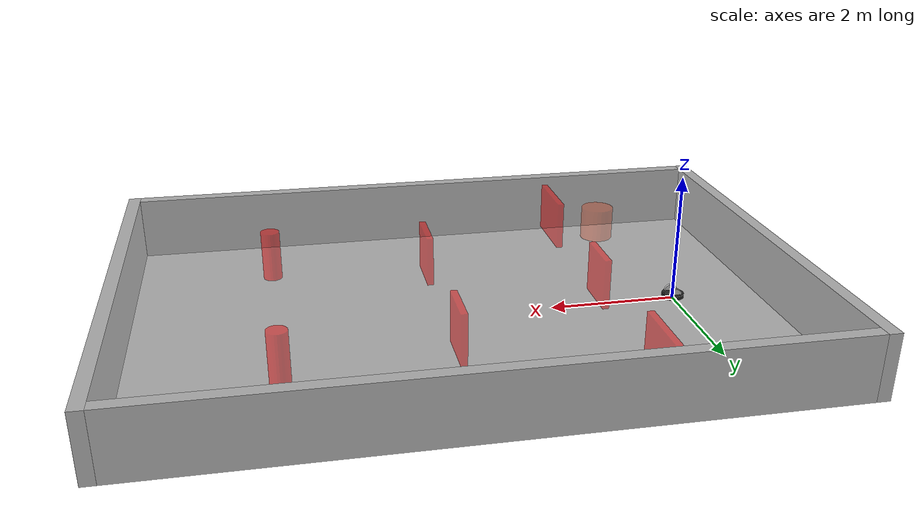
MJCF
<mujoco model="jackal_safe_navigation">
	<compiler angle="radian" meshdir="meshes/" />

    <size njmax="3000" nconmax="1000" />
    <option gravity="0 0 -9.8"/>
	<option timestep="0.002">
		<flag warmstart="enable"></flag>
	</option>

    <default>
        <geom condim="6" density="5" rgba="0.7 0.7 0.7 1" size=".05" type="sphere"/>
        <joint damping=".001"/>
        <site size="0.032" type="sphere"/>
        <velocity ctrlrange="-1 1" ctrllimited="true" forcerange="-1 1" forcelimited="true"/>
    </default>

    <asset>
        <!--Meshes-->
        <mesh name="base" file="tbot.stl" />

        <!--Textures-->
        <texture name="floor_tex"   type="2d" builtin="checker" rgb1="0.7 0.7 0.7" rgb2="0.9 0.9 0.9" width="100" height="100" />

        <!--Materials-->
        <material name="floor_mat" texture="floor_tex" shininess="0.3" texrepeat="10 7" specular="0.5" reflectance="0.2" />
        <material name="wall_mat" rgba="0.7 0.7 0.7 1" shininess="0.8" specular="0.7" reflectance="0.5" />
        <material name="bench_mat" texture="floor_tex" shininess="0.1" specular="0.5" reflectance="0.2"/>
    </asset>

	<worldbody>
		<light directional="true" ambient="0.2 0.2 0.2" diffuse="0.4 0.4 0.4" specular="0.1 0.1 0.1" castshadow="false" pos="0 0 4" dir="0 0 -1" name="light0" />

        <!-- Floor Property -->
        <geom name='floor' material="floor_mat" pos='3.5 0 0' size='5.0 3.5 0.1'  type='plane' condim="3"/>

        <!-- Wall Property -->
        <geom name='wall1' material="wall_mat" pos='3.5 3.5 0.5' size='4.9 0.1 0.5'  type='box' condim="6" group="2"/>
        <geom name='wall2' material="wall_mat" pos='3.5 -3.5 0.5' size='4.9 0.1 0.5'  type='box' condim="6" group="2"/>
        <geom name='wall3' material="wall_mat" pos='8.5 0 0.5' size='0.1 3.6 0.5'  type='box' condim="6" group="2"/>
        <geom name='wall4' material="wall_mat" pos='-1.5 0 0.5' size='0.1 3.6 0.5'  type='box' condim="6" group="2"/>

        <body name="wall5" pos="1.25 0.0 0.5">
            <joint type="free" name="wall5" frictionloss="0" damping="0" />
            <geom name="wall5" type="box" size="0.05 0.4 0.4" rgba="1 0 0 0.5" mass="0.1" condim="6" group="2"/>
        </body>
        <body name="wall6" pos="1.25 2.72 0.5">
            <joint type="free" name="wall6" frictionloss="0" damping="0" />
            <geom name="wall6" type="box" size="0.05 0.55 0.4" rgba="1 0 0 0.5" mass="0.1" condim="6" group="2"/>
        </body>
        <body name="wall7" pos="1.25 -2.72 0.5">
            <joint type="free" name="wall7" frictionloss="0" damping="0" />
            <geom name="wall7" type="box" size="0.05 0.55 0.4" rgba="1 0 0 0.5" mass="0.1" condim="6" group="2"/>
        </body>

        <body name="wall8" pos="3.75 1.4 0.5">
            <joint type="free" name="wall8" frictionloss="0" damping="0" />
            <geom name="wall8" type="box" size="0.05 0.4 0.4" rgba="1 0 0 0.5" mass="0.1" group="2"/>
        </body>
        <body name="wall9" pos="3.75 -1.4 0.5">
            <joint type="free" name="wall9" frictionloss="0" damping="0" />
            <geom name="wall9" type="box" size="0.05 0.4 0.4" rgba="1 0 0 0.5" mass="0.1" group="2"/>
        </body>

        <body name="wall10" pos="6.25 1.8 0.5">
            <joint type="free" name="wall10" frictionloss="0" damping="0" />
            <geom name="wall10" type="cylinder" size="0.15 0.4" rgba="1 0 0 0.5" mass="0.1" group="2"/>
        </body>
        <body name="wall11" pos="6.25 -1.8 0.5">
            <joint type="free" name="wall11" frictionloss="0" damping="0" />
            <geom name="wall11" type="cylinder" size="0.15 0.4" rgba="1 0 0 0.5" mass="0.1" group="2"/>
        </body>

		<!-- camera: front view -->
		<camera mode="fixed" name="frontview" pos="3.0 0 1.85" quat="0.56 0.43 0.43 0.56"/>

		<!-- Robot -->
		<body name="robot" pos="0 0 0.06344">
            <site name="robot" pos="0 0 0"/>
            <joint type="free" name="robot" damping="0"/>

            <geom pos="0 0 0" quat="1 0 0 0" type="mesh" contype="0" conaffinity="0" group="1" rgba="0.15 0.15 0.15 1" mesh="base"/>

            <geom name="robot" size="0.18 0.2" pos="0 0 0.15" type="cylinder" rgba="0.2 0.2 0.2 1" group="5" mass="4.0"/>

            <body name="left" pos="0.0 0.1 0.0345">
                <joint type="hinge" name="left" axis="0 1 0"/>
                <geom type="cylinder" name="left" size="0.098 0.02" quat="0.707107 0.707107 0 0" group="1" condim="4" mass=".5"/>
            </body>

            <body name="right" pos="0.0 -0.1 0.0345">
                <joint type="hinge" name="right" axis="0 1 0"/>
                <geom type="cylinder" name="right" size="0.098 0.02" quat="0.707107 0.707107 0 0" group="1" condim="4" mass=".5"/>
            </body>

            <body name="front" pos="0.131 0 -0.0155">
                <joint name="front" type="ball"/>
                <geom name="front" size="0.048" group="1" mass=".5"/>
            </body>
            <body name="rear" pos="-0.131 0 -0.0155">
                <joint name="rear" type="ball"/>
                <geom name="rear" size="0.048" group="1" mass=".5"/>
            </body>
		</body>

        <!-- goal -->
        <body name="goal" pos="1.0 -1.0 1.0">
            <site name="goal" pos="0 0 0" rgba="0 0 1 0"/>
            <joint type="free" name="goal" frictionloss="0" damping="0" />
            <geom type="cylinder" size="0.25 0.25 0.25" contype="0" conaffinity="0" group="1" rgba="1 0.2 0 0.3" mass="0.1"/>
        </body>

	</worldbody>

    <sensor>
        <!-- Used for observation -->
        <accelerometer site="robot" name="accelerometer"/>
        <velocimeter site="robot" name="velocimeter"/>
        <gyro site="robot" name="gyro"/>
    </sensor>

    <!--ACTUATORS-->
    <actuator>

        <motor gear="0.6 0 0 0 0 0" joint="left" name="left"/>
        <motor gear="0.6 0 0 0 0 0" joint="right" name="right"/>

    </actuator>
</mujoco>
